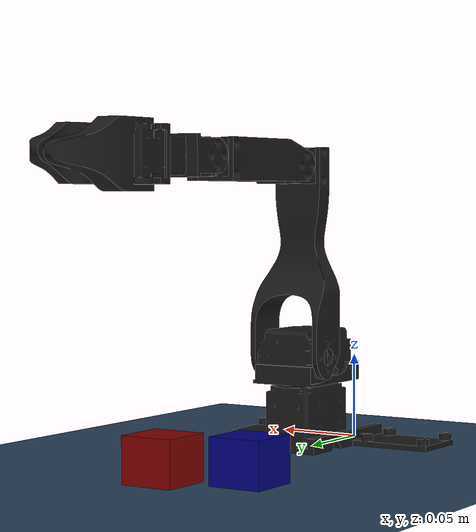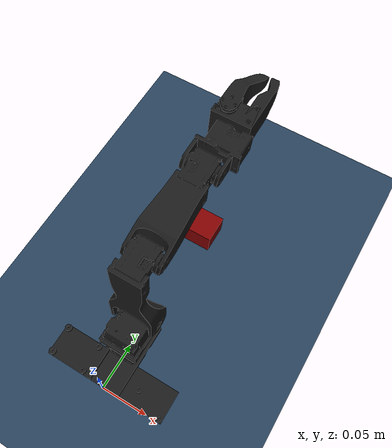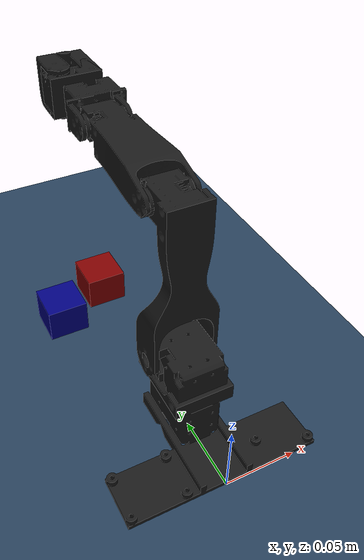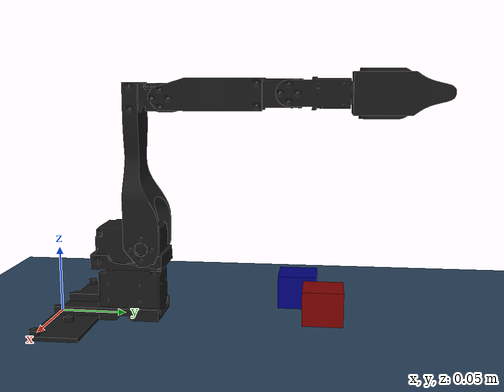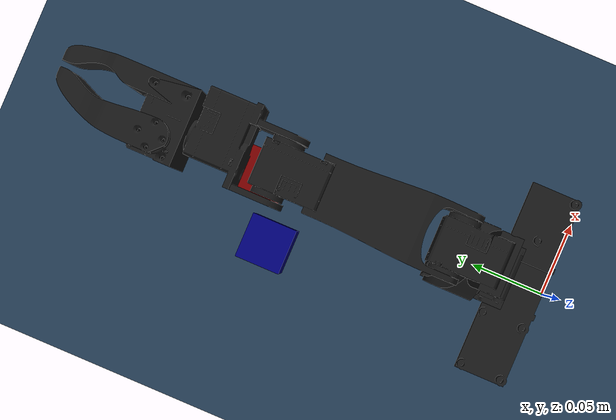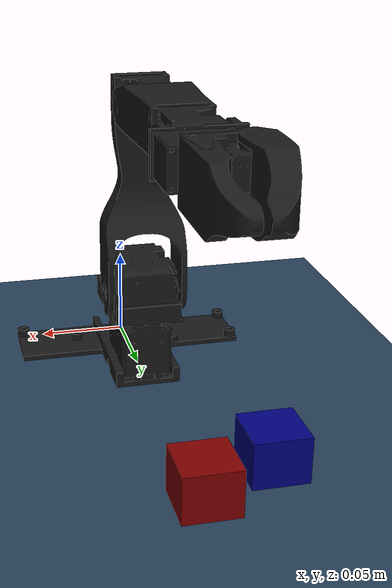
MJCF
<mujoco model="low_cost_robot scene">
  <!-- The timestep has a big influence on the contacts stability -->
  <option cone="elliptic" impratio="10" timestep="0.001"/>

  <include file="low_cost_robot.xml"/>

  <statistic center="0 0 0.1" extent="0.6"/>

  <visual>
    <headlight diffuse="0.6 0.6 0.6" ambient="0.3 0.3 0.3" specular="0 0 0"/>
    <rgba haze="0.15 0.25 0.35 1"/>
    <global azimuth="140" elevation="-30"/>
  </visual>

  <asset>
    <texture type="skybox" builtin="gradient" rgb1="0.3 0.5 0.7" rgb2="0 0 0" width="512" height="3072"/>
    <texture type="2d" name="groundplane" builtin="checker" mark="edge" rgb1="0.2 0.3 0.4" rgb2="0.1 0.2 0.3"
      markrgb="0.8 0.8 0.8" width="300" height="300"/>
    <material name="groundplane" texture="groundplane" texuniform="true" texrepeat="5 5" reflectance="0.2"/>
  </asset>

  <worldbody>
    <light pos="0 0 1.5" dir="0 0 -1" directional="true"/>
    <camera name="closeup" pos="-0.078 -0.148 0.330" xyaxes="0.973 -0.230 0.000 0.167 0.705 0.690"/>

    <geom name="floor" size="0 0 0.05" type="plane" material="groundplane" pos="0 0 0" friction="0.1"/>
    <body name="box" pos="0.0 0.2 0.01">
        <freejoint name="red_box_joint"/>
        <inertial pos="0 0 0" mass="0.1" diaginertia="0.00016667 0.00016667 0.00016667"/>
        <geom friction="0.5" condim="3" pos="0 0 0" size="0.015 0.015 0.015" type="box" name="red_box" rgba="0.5 0 0 1" priority="1"/>
    </body>
    <body name="box2" pos="-0.04 0.18 0.01">
        <freejoint name="blue_box_joint"/>
        <inertial pos="0 0 0" mass="0.1" diaginertia="0.00016667 0.00016667 0.00016667"/>
        <geom friction="0.5" condim="3" pos="0 0 0" size="0.015 0.015 0.015" type="box" name="blue_box" rgba="0.0 0 0.5 1" priority="1"/>
    </body>
  </worldbody>

</mujoco>

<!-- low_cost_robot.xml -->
<mujoco model="low_cost_robot">
    <compiler angle="radian" meshdir="assets" texturedir="assets" autolimits="true"/>
    <!-- The timestep has a big influence on the contacts stability -->
    <option cone="elliptic" impratio="10" timestep="0.001"/>
    <asset>
        <mesh file="base_link.stl" scale="0.001 0.001 0.001"/>
        <mesh file="first-bracket-motor_1.stl" scale="0.001 0.001 0.001"/>
        <mesh file="shoulder-to-elbow-motor_v1_1.stl" scale="0.001 0.001 0.001"/>
        <mesh file="elbow-to-wrist-motor-reference_v1_1.stl" scale="0.001 0.001 0.001"/>
        <mesh file="elbow_to_wrist_with_motor.stl" scale="0.001 0.001 0.001"/>
        <mesh file="gripper-static-motor-pt1.stl" scale="0.001 0.001 0.001"/>
        <mesh file="gripper-static-motor-pt2.stl" scale="0.001 0.001 0.001"/>
        <mesh file="gripper-moving-part-dumb_v2_1.stl" scale="0.001 0.001 0.001"/>
    </asset>
    <default>
        <default class="low_cost_robot">
            <general biastype="affine"/>
            <joint axis="0 1 0"/>
            <default class="joint1">
                <joint axis="0 0 1" range="-3.14158 3.14158" damping="0.5"/>
                <position ctrlrange="-3.14158 3.14158" kp="50"/>
            </default>
            <default class="joint2">
                <joint axis="1 0 0" range="-3.14158 3.14158" damping="0.5"/>
                <position ctrlrange="-3.14158 3.14158" kp="10"/>
            </default>
            <default class="joint3">
                <joint axis="1 0 0" range="-3.14158 3.14158" damping="0.5"/>
                <position ctrlrange="-3.14158 3.14158" kp="10"/>
            </default>
            <default class="joint4">
                <joint axis="1 0 0" range="-3.14158 3.14158" damping="0.5"/>
                <position ctrlrange="-3.14158 3.14158" kp="10"/>
            </default>
            <default class="joint5">
                <joint axis="0 -1 0" range="-3.14158 3.14158" damping="0.5"/>
                <position ctrlrange="-3.14158 3.14158" kp="10"/>
            </default>
            <default class="joint6">
                <joint axis="0 0 -1" range="-2.45 0.032" damping="0.5"/>
                <position ctrlrange="-1.52 0.032" kp="10"/>
            </default>
        </default>
    </default>
    <worldbody>
        <body name="base_link" pos="0 0 0">
            <geom type="mesh" name="base_link" mesh="base_link" rgba="0.1 0.1 0.1 1"/>
            <body name="joint1" pos="0 0.07 0.0">
                <joint name="joint1" axis="0 0 1" pos="0 0 0" class="joint1"/>
                <geom type="mesh" name="joint1" pos="0 -0.07 0" mesh="first-bracket-motor_1" rgba="0.1 0.1 0.1 1"/>
                <body name="joint2" pos="0 0 0.055">
                    <joint name="joint2" axis="1 0 0" class="joint2"/>
                    <geom type="mesh" pos="0 -0.07 -0.055" name="joint2" mesh="shoulder-to-elbow-motor_v1_1" rgba="0.1 0.1 0.1 1"/>
                    <body name="joint3" pos="0.0 0.0135 0.108">
                        <joint name="joint3" axis="1 0 0" class="joint3"/>
                        <geom pos="-0.0138 -0.0075 -0.0141" type="mesh" name="joint3" mesh="elbow_to_wrist_with_motor" rgba="0.1 0.1 0.1 1"/>
                        <body name="joint4" pos="0 0.091 0.0035">
                            <joint name="joint4" class="joint4"/>
                            <geom pos="0 -0.084 -0.163" type="mesh" name="joint4" mesh="elbow-to-wrist-motor-reference_v1_1" rgba="0.1 0.1 0.1 1"/>
                            <body name="joint5" pos="0 0.04 0">
                                <joint name="joint5" class="joint5"/>
                                <geom pos="0 -0.125 -0.163" type="mesh" name="joint5-pt1" mesh="gripper-static-motor-pt1" rgba="0.1 0.1 0.1 1"/>
                                <geom pos="0 -0.125 -0.163" type="mesh" name="joint5" mesh="gripper-static-motor-pt2" rgba="0.1 0.1 0.1 1" contype="0" conaffinity="0"/>
                                <body name="joint5-pad">
                                    <geom type="box" condim="3" friction="0.7" mass="0.01" solimp="0.95 0.99 0.001" solref="0.004 1" name="static_finger_pad" size="0.006 0.006 0.006" pos="0.0135 0.07 0.0" priority="1" rgba="0 0 0.8 0"/>
                                </body>

                                <body name="joint6" pos="0 0 0">
                                    <joint pos="-0.009 0.0165 0" name="joint6" class="joint6"/>
                                    <geom pos="0 -0.125 -0.163" type="mesh" name="joint6" mesh="gripper-moving-part-dumb_v2_1" rgba="0.1 0.1 0.1 1" contype="0" conaffinity="0"/>
                                    <body name="joint6-pad">
                                        <geom type="box" condim="3" friction="0.7" mass="0.01" solimp="0.95 0.99 0.001" solref="0.004 1" name="moving_finger_pad" size="0.006 0.006 0.006" pos="0 0.07 0" euler="0 0 -0.3" priority="1" rgba="0 0 0.8 0"/>
                                    </body>
                                </body>
                            </body>
                        </body>
                    </body>
                </body>
            </body>
        </body>
    </worldbody>
    <actuator>
        <position class="joint1" name="joint1" joint="joint1"/>
        <position class="joint2" name="joint2" joint="joint2"/>
        <position class="joint3" name="joint3" joint="joint3"/>
        <position class="joint4" name="joint4" joint="joint4"/>
        <position class="joint5" name="joint5" joint="joint5"/>
        <position class="joint6" name="joint6" joint="joint6"/>
    </actuator>
</mujoco>
